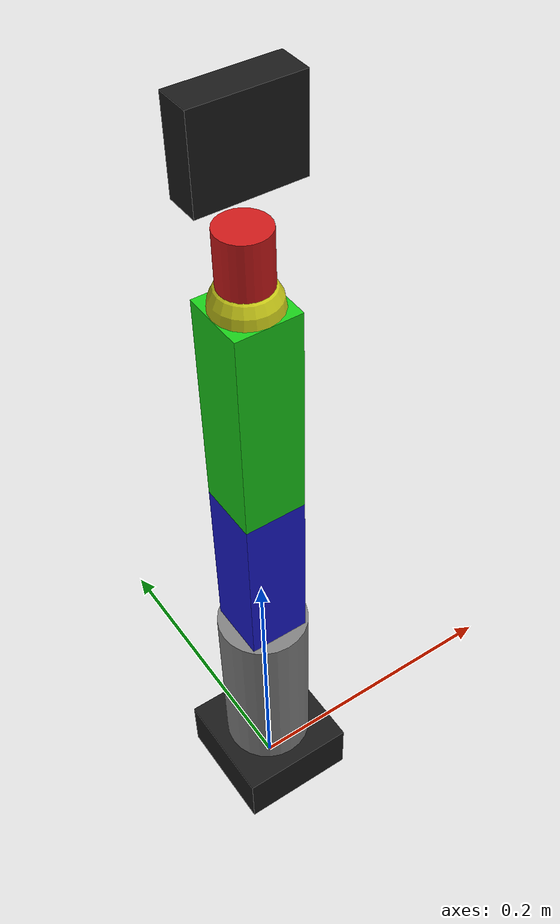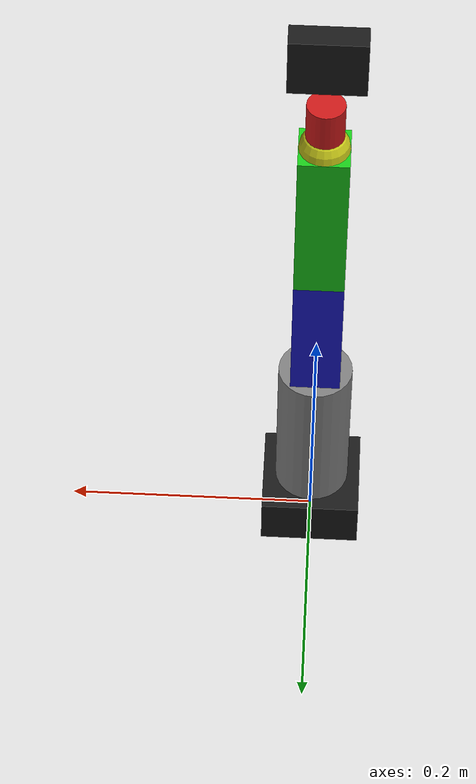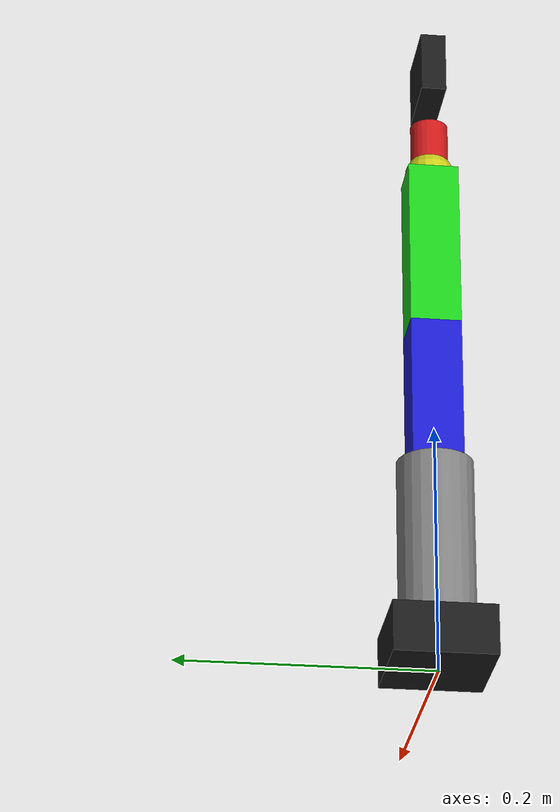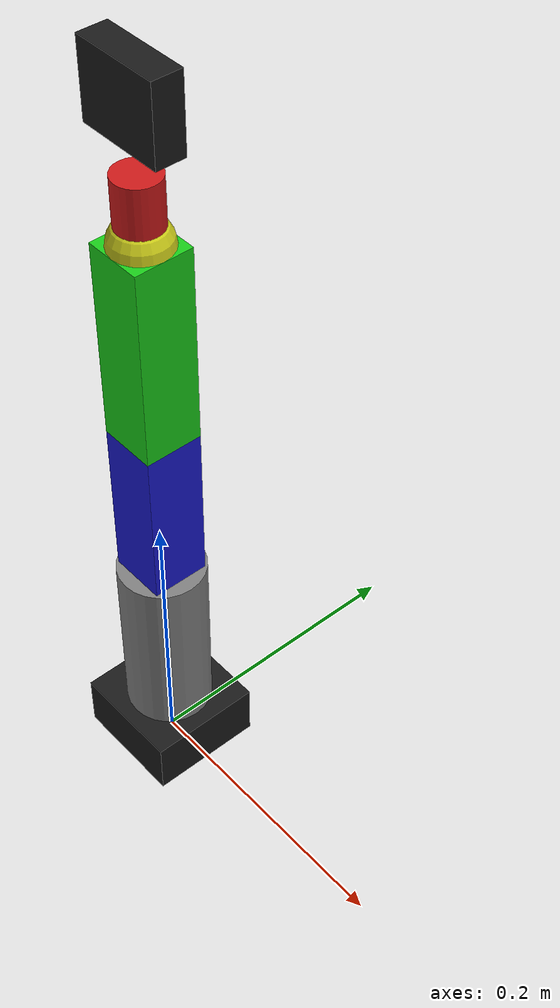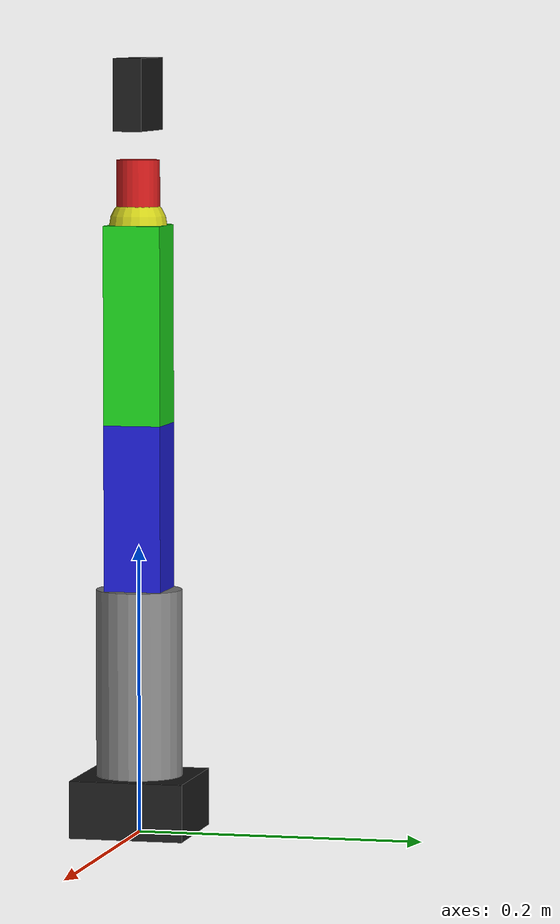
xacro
<?xml version="1.0"?>
<robot xmlns:xacro="http://www.ros.org/wiki/xacro" name="so_arm101">

  <!-- Properties -->
  <xacro:property name="M_PI" value="3.14159265359"/>
  <xacro:property name="base_width" value="0.08"/>
  <xacro:property name="base_height" value="0.04"/>
  <xacro:property name="shoulder_height" value="0.170"/>
  <xacro:property name="l1_len" value="0.115"/>
  <xacro:property name="l2_len" value="0.1375"/>
  <xacro:property name="l3_len" value="0.090"/>
  <xacro:property name="link_width" value="0.04"/>
  <xacro:property name="mass_typical" value="0.055"/>

  <!-- Materials -->
  <material name="grey">
    <color rgba="0.5 0.5 0.5 1"/>
  </material>
  <material name="blue">
    <color rgba="0.1 0.1 0.8 1"/>
  </material>
  <material name="green">
    <color rgba="0.1 0.8 0.1 1"/>
  </material>
  <material name="red">
    <color rgba="0.8 0.1 0.1 1"/>
  </material>
  <material name="yellow">
    <color rgba="0.8 0.8 0.1 1"/>
  </material>
  <material name="black">
    <color rgba="0.1 0.1 0.1 1"/>
  </material>

  <!-- Macro for inertia -->
  <xacro:macro name="cylinder_inertia" params="m r h">
    <inertial>
      <mass value="${m}"/>
      <inertia ixx="${m*(3*r*r+h*h)/12}" ixy="0" ixz="0"
               iyy="${m*(3*r*r+h*h)/12}" iyz="0"
               izz="${m*r*r/2}"/>
    </inertial>
  </xacro:macro>

  <xacro:macro name="box_inertia" params="m w d h">
    <inertial>
      <mass value="${m}"/>
      <inertia ixx="${m*(d*d+h*h)/12}" ixy="0" ixz="0"
               iyy="${m*(w*w+h*h)/12}" iyz="0"
               izz="${m*(w*w+d*d)/12}"/>
    </inertial>
  </xacro:macro>

  <!-- BASE LINK -->
  <link name="base_link">
    <visual>
      <origin xyz="0 0 ${base_height/2}" rpy="0 0 0"/>
      <geometry>
        <box size="${base_width} ${base_width} ${base_height}"/>
      </geometry>
      <material name="black"/>
    </visual>
    <collision>
      <origin xyz="0 0 ${base_height/2}" rpy="0 0 0"/>
      <geometry>
        <box size="${base_width} ${base_width} ${base_height}"/>
      </geometry>
    </collision>
    <xacro:box_inertia m="${mass_typical*2}" w="${base_width}" d="${base_width}" h="${base_height}"/>
  </link>

  <!-- SHOULDER PAN LINK -->
  <link name="shoulder_pan_link">
    <visual>
      <origin xyz="0 0 ${(shoulder_height - base_height)/2}" rpy="0 0 0"/>
      <geometry>
        <cylinder radius="0.03" length="${shoulder_height - base_height}"/>
      </geometry>
      <material name="grey"/>
    </visual>
    <collision>
      <origin xyz="0 0 ${(shoulder_height - base_height)/2}" rpy="0 0 0"/>
      <geometry>
        <cylinder radius="0.03" length="${shoulder_height - base_height}"/>
      </geometry>
    </collision>
    <xacro:cylinder_inertia m="${mass_typical}" r="0.03" h="${shoulder_height - base_height}"/>
  </link>

  <joint name="shoulder_pan_joint" type="revolute">
    <parent link="base_link"/>
    <child link="shoulder_pan_link"/>
    <origin xyz="0 0 ${base_height}" rpy="0 0 0"/>
    <axis xyz="0 0 1"/>
    <!-- limits [-113.8°, +113.8°] -> +/- 1.986 rad -->
    <limit lower="-1.986" upper="1.986" effort="1.0" velocity="1.0"/>
  </joint>

  <!-- SHOULDER LIFT LINK -->
  <link name="shoulder_lift_link">
    <visual>
      <origin xyz="0 0 ${l1_len/2}" rpy="0 0 0"/>
      <geometry>
        <box size="${link_width} ${link_width} ${l1_len}"/>
      </geometry>
      <material name="blue"/>
    </visual>
    <collision>
      <origin xyz="0 0 ${l1_len/2}" rpy="0 0 0"/>
      <geometry>
        <box size="${link_width} ${link_width} ${l1_len}"/>
      </geometry>
    </collision>
    <xacro:box_inertia m="${mass_typical}" w="${link_width}" d="${link_width}" h="${l1_len}"/>
  </link>

  <joint name="shoulder_lift_joint" type="revolute">
    <parent link="shoulder_pan_link"/>
    <child link="shoulder_lift_link"/>
    <origin xyz="0 0 ${shoulder_height - base_height}" rpy="0 0 0"/>
    <axis xyz="0 1 0"/>
    <!-- limits [-110°, +150°] -> [-1.919, +2.618] -->
    <limit lower="-1.919" upper="2.618" effort="1.0" velocity="1.0"/>
  </joint>

  <!-- ELBOW LINK -->
  <link name="elbow_link">
    <visual>
      <origin xyz="0 0 ${l2_len/2}" rpy="0 0 0"/>
      <geometry>
        <box size="${link_width} ${link_width} ${l2_len}"/>
      </geometry>
      <material name="green"/>
    </visual>
    <collision>
      <origin xyz="0 0 ${l2_len/2}" rpy="0 0 0"/>
      <geometry>
        <box size="${link_width} ${link_width} ${l2_len}"/>
      </geometry>
    </collision>
    <xacro:box_inertia m="${mass_typical}" w="${link_width}" d="${link_width}" h="${l2_len}"/>
  </link>

  <joint name="elbow_joint" type="revolute">
    <parent link="shoulder_lift_link"/>
    <child link="elbow_link"/>
    <origin xyz="0 0 ${l1_len}" rpy="0 0 0"/>
    <axis xyz="0 1 0"/>
    <!-- limits [-120°, +120°] -> +/- 2.094 rad -->
    <limit lower="-2.094" upper="2.094" effort="1.0" velocity="1.0"/>
  </joint>

  <!-- WRIST FLEX LINK -->
  <link name="wrist_flex_link">
    <visual>
      <origin xyz="0 0 0" rpy="0 0 0"/>
      <geometry>
        <sphere radius="0.02"/>
      </geometry>
      <material name="yellow"/>
    </visual>
    <collision>
      <origin xyz="0 0 0" rpy="0 0 0"/>
      <geometry>
        <sphere radius="0.02"/>
      </geometry>
    </collision>
    <xacro:cylinder_inertia m="${mass_typical}" r="0.02" h="0.04"/>
  </link>

  <joint name="wrist_flex_joint" type="revolute">
    <parent link="elbow_link"/>
    <child link="wrist_flex_link"/>
    <origin xyz="0 0 ${l2_len}" rpy="0 0 0"/>
    <axis xyz="0 1 0"/>
    <!-- limits [-120°, +120°] -> +/- 2.094 rad -->
    <limit lower="-2.094" upper="2.094" effort="1.0" velocity="1.0"/>
  </joint>

  <!-- WRIST ROLL LINK -->
  <link name="wrist_roll_link">
    <visual>
      <origin xyz="0 0 ${l3_len/4}" rpy="0 0 0"/>
      <geometry>
        <cylinder radius="0.015" length="${l3_len/2}"/>
      </geometry>
      <material name="red"/>
    </visual>
    <collision>
      <origin xyz="0 0 ${l3_len/4}" rpy="0 0 0"/>
      <geometry>
        <cylinder radius="0.015" length="${l3_len/2}"/>
      </geometry>
    </collision>
    <xacro:cylinder_inertia m="${mass_typical}" r="0.015" h="${l3_len/2}"/>
  </link>

  <joint name="wrist_roll_joint" type="revolute">
    <parent link="wrist_flex_link"/>
    <child link="wrist_roll_link"/>
    <origin xyz="0 0 0" rpy="0 0 0"/>
    <axis xyz="1 0 0"/>
    <!-- limits [-180°, +180°] -> +/- 3.14159 rad -->
    <limit lower="-3.14159" upper="3.14159" effort="1.0" velocity="1.0"/>
  </joint>

  <!-- GRIPPER LINK -->
  <link name="gripper_link">
    <visual>
      <origin xyz="0 0 ${l3_len/2}" rpy="0 0 0"/>
      <geometry>
        <box size="0.06 0.02 0.05"/>
      </geometry>
      <material name="black"/>
    </visual>
    <collision>
      <origin xyz="0 0 ${l3_len/2}" rpy="0 0 0"/>
      <geometry>
        <box size="0.06 0.02 0.05"/>
      </geometry>
    </collision>
    <xacro:box_inertia m="${mass_typical}" w="0.06" d="0.02" h="0.05"/>
  </link>

  <joint name="gripper_joint" type="fixed">
    <parent link="wrist_roll_link"/>
    <child link="gripper_link"/>
    <origin xyz="0 0 ${l3_len/2}" rpy="0 0 0"/>
  </joint>

  <!-- CAMERA MOUNT -->
  <link name="camera_mount_link"/>

  <joint name="camera_mount_joint" type="fixed">
    <parent link="wrist_flex_link"/>
    <child link="camera_mount_link"/>
    <!-- 50mm above wrist center, 45 deg pitch down -->
    <!-- Pitch rotation by 45 degrees (0.785 rad) around Y axis -->
    <origin xyz="0.035 0 0.050" rpy="0 0.785 0"/>
  </joint>

  <link name="camera_link"/>

  <joint name="camera_joint" type="fixed">
    <parent link="camera_mount_link"/>
    <child link="camera_link"/>
    <origin xyz="0 0 0" rpy="0 0 0"/>
  </joint>

</robot>
